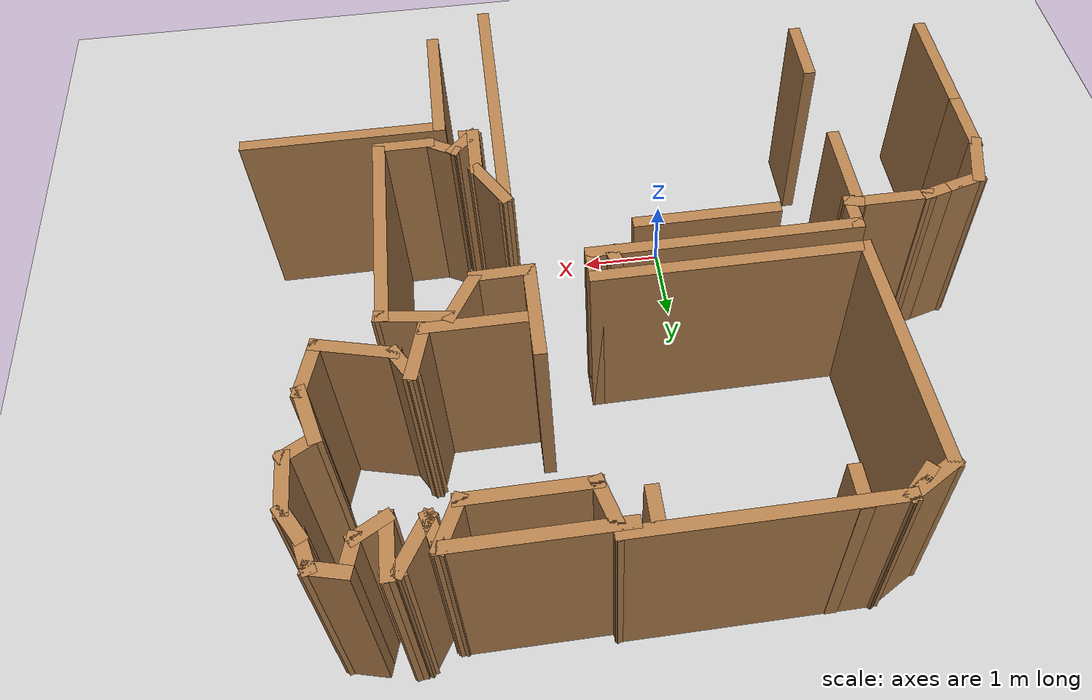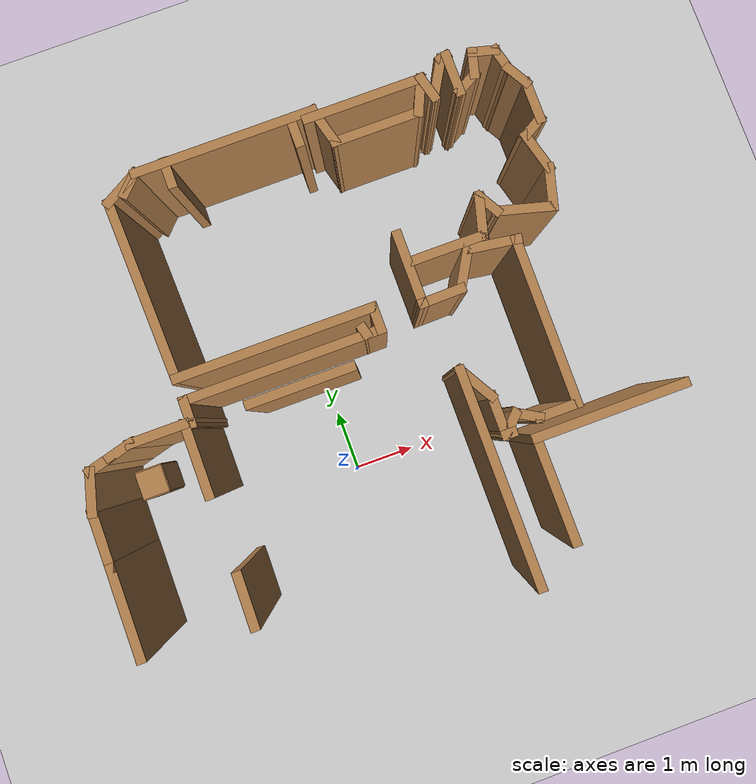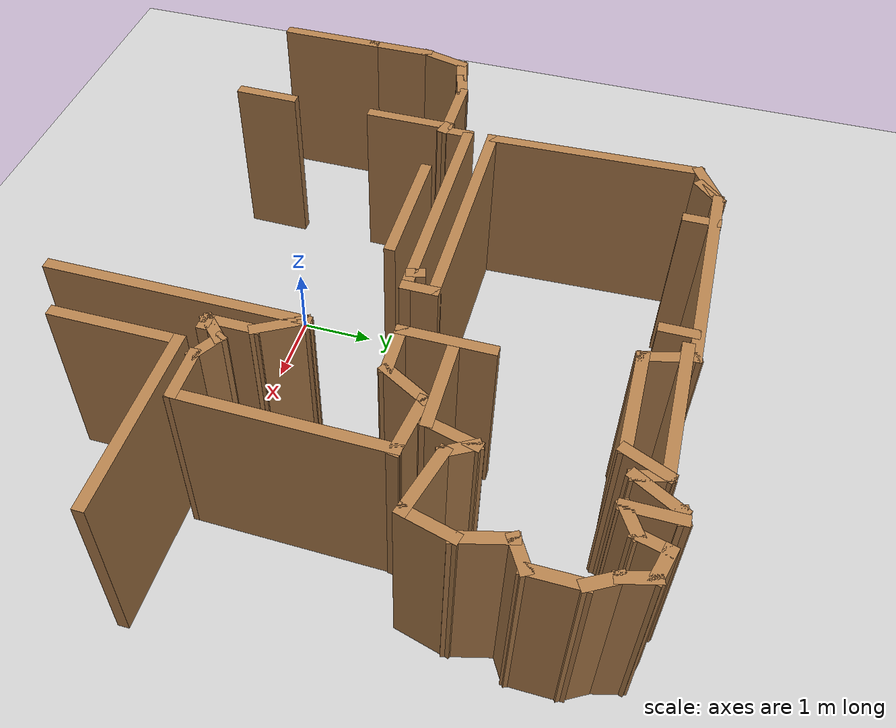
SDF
<sdf version="1.7">
 <world name="default">
  <model name="ground_plane">
   <static>1</static>
   <link name="link">
    <collision name="collision">
     <geometry><plane><normal>0 0 1</normal><size>100 100</size></plane></geometry>
     <surface>
      <contact><collide_bitmask>65535</collide_bitmask></contact>
      <friction><ode><mu>100</mu><mu2>50</mu2></ode></friction>
     </surface>
    </collision>
    <visual name="visual">
     <cast_shadows>0</cast_shadows>
     <geometry><plane><normal>0 0 1</normal><size>100 100</size></plane></geometry>
     <material>
      <script><uri>file://media/materials/scripts/gazebo.material</uri><name>Gazebo/Grey</name></script>
     </material>
    </visual>
   </link>
  </model>
  <model name="map_9">
   <pose>0.660855 -0.93148 0 0 -0 0</pose>
   <link name="Wall_0">
    <collision name="Wall_0_Collision">
     <geometry><box><size>3 0.15 2.5</size></box></geometry>
     <pose>0 0 1.25 0 -0 0</pose>
    </collision>
    <visual name="Wall_0_Visual">
     <pose>0 0 1.25 0 -0 0</pose>
     <geometry><box><size>3 0.15 2.5</size></box></geometry>
     <material>
      <script><uri>file://media/materials/scripts/gazebo.material</uri><name>Gazebo/Wood</name></script>
      <ambient>1 1 1 1</ambient>
     </material>
     <meta><layer>0</layer></meta>
    </visual>
    <pose>-0.783393 6.3177 0 0 -0 3.14159</pose>
   </link>
   <link name="Wall_1">
    <collision name="Wall_1_Collision">
     <geometry><box><size>0.5 0.15 2.5</size></box></geometry>
     <pose>0 0 1.25 0 -0 0</pose>
    </collision>
    <visual name="Wall_1_Visual">
     <pose>0 0 1.25 0 -0 0</pose>
     <geometry><box><size>0.5 0.15 2.5</size></box></geometry>
     <material>
      <script><uri>file://media/materials/scripts/gazebo.material</uri><name>Gazebo/Wood</name></script>
      <ambient>1 1 1 1</ambient>
     </material>
     <meta><layer>0</layer></meta>
    </visual>
    <pose>-2.33214 6.19396 0 0 -0 -2.35619</pose>
   </link>
   <link name="Wall_10">
    <collision name="Wall_10_Collision">
     <geometry><box><size>3.00225 0.15 2.5</size></box></geometry>
     <pose>0 0 1.25 0 -0 0</pose>
    </collision>
    <visual name="Wall_10_Visual">
     <pose>0 0 1.25 0 -0 0</pose>
     <geometry><box><size>3.00225 0.15 2.5</size></box></geometry>
     <material>
      <script><uri>file://media/materials/scripts/gazebo.material</uri><name>Gazebo/Wood</name></script>
      <ambient>1 1 1 1</ambient>
     </material>
     <meta><layer>0</layer></meta>
    </visual>
    <pose>-2.67944 4.5924 0 0 -0 -1.53674</pose>
   </link>
   <link name="Wall_100">
    <collision name="Wall_100_Collision">
     <geometry><box><size>2.75093 0.15 2.5</size></box></geometry>
     <pose>0 0 1.25 0 -0 0</pose>
    </collision>
    <visual name="Wall_100_Visual">
     <pose>0 0 1.25 0 -0 0</pose>
     <geometry><box><size>2.75093 0.15 2.5</size></box></geometry>
     <material>
      <script><uri>file://media/materials/scripts/gazebo.material</uri><name>Gazebo/Wood</name></script>
      <ambient>1 1 1 1</ambient>
     </material>
     <meta><layer>0</layer></meta>
    </visual>
    <pose>2.82487 2.0909 0 0 -0 1.5619</pose>
   </link>
   <link name="Wall_101">
    <collision name="Wall_101_Collision">
     <geometry><box><size>0.893137 0.15 2.5</size></box></geometry>
     <pose>0 0 1.25 0 -0 0</pose>
    </collision>
    <visual name="Wall_101_Visual">
     <pose>0 0 1.25 0 -0 0</pose>
     <geometry><box><size>0.893137 0.15 2.5</size></box></geometry>
     <material>
      <script><uri>file://media/materials/scripts/gazebo.material</uri><name>Gazebo/Wood</name></script>
      <ambient>1 1 1 1</ambient>
     </material>
     <meta><layer>0</layer></meta>
    </visual>
    <pose>2.49186 3.44439 0 0 -0 2.99715</pose>
   </link>
   <link name="Wall_102">
    <collision name="Wall_102_Collision">
     <geometry><box><size>0.75 0.15 2.5</size></box></geometry>
     <pose>0 0 1.25 0 -0 0</pose>
    </collision>
    <visual name="Wall_102_Visual">
     <pose>0 0 1.25 0 -0 0</pose>
     <geometry><box><size>0.75 0.15 2.5</size></box></geometry>
     <material>
      <script><uri>file://media/materials/scripts/gazebo.material</uri><name>Gazebo/Wood</name></script>
      <ambient>1 1 1 1</ambient>
     </material>
     <meta><layer>0</layer></meta>
    </visual>
    <pose>1.95103 3.23807 0 0 -0 -2.0944</pose>
   </link>
   <link name="Wall_103">
    <collision name="Wall_103_Collision">
     <geometry><box><size>0.762107 0.15 2.5</size></box></geometry>
     <pose>0 0 1.25 0 -0 0</pose>
    </collision>
    <visual name="Wall_103_Visual">
     <pose>0 0 1.25 0 -0 0</pose>
     <geometry><box><size>0.762107 0.15 2.5</size></box></geometry>
     <material>
      <script><uri>file://media/materials/scripts/gazebo.material</uri><name>Gazebo/Wood</name></script>
      <ambient>1 1 1 1</ambient>
     </material>
     <meta><layer>0</layer></meta>
    </visual>
    <pose>1.49503 2.97245 0 0 -0 -3.12261</pose>
   </link>
   <link name="Wall_106">
    <collision name="Wall_106_Collision">
     <geometry><box><size>1.25 0.15 2.5</size></box></geometry>
     <pose>0 0 1.25 0 -0 0</pose>
    </collision>
    <visual name="Wall_106_Visual">
     <pose>0 0 1.25 0 -0 0</pose>
     <geometry><box><size>1.25 0.15 2.5</size></box></geometry>
     <material>
      <script><uri>file://media/materials/scripts/gazebo.material</uri><name>Gazebo/Wood</name></script>
      <ambient>1 1 1 1</ambient>
     </material>
     <meta><layer>0</layer></meta>
    </visual>
    <pose>1.18904 3.51664 0 0 -0 1.5708</pose>
   </link>
   <link name="Wall_108">
    <collision name="Wall_108_Collision">
     <geometry><box><size>1.25 0.15 2.5</size></box></geometry>
     <pose>0 0 1.25 0 -0 0</pose>
    </collision>
    <visual name="Wall_108_Visual">
     <pose>0 0 1.25 0 -0 0</pose>
     <geometry><box><size>1.25 0.15 2.5</size></box></geometry>
     <material>
      <script><uri>file://media/materials/scripts/gazebo.material</uri><name>Gazebo/Wood</name></script>
      <ambient>1 1 1 1</ambient>
     </material>
     <meta><layer>0</layer></meta>
    </visual>
    <pose>1.84331 3.61909 0 0 -0 0</pose>
   </link>
   <link name="Wall_109">
    <collision name="Wall_109_Collision">
     <geometry><box><size>0.75 0.15 2.5</size></box></geometry>
     <pose>0 0 1.25 0 -0 0</pose>
    </collision>
    <visual name="Wall_109_Visual">
     <pose>0 0 1.25 0 -0 0</pose>
     <geometry><box><size>0.75 0.15 2.5</size></box></geometry>
     <material>
      <script><uri>file://media/materials/scripts/gazebo.material</uri><name>Gazebo/Wood</name></script>
      <ambient>1 1 1 1</ambient>
     </material>
     <meta><layer>0</layer></meta>
    </visual>
    <pose>2.47096 3.90887 0 0 -0 1.309</pose>
   </link>
   <link name="Wall_110">
    <collision name="Wall_110_Collision">
     <geometry><box><size>0.5 0.15 2.5</size></box></geometry>
     <pose>0 0 1.25 0 -0 0</pose>
    </collision>
    <visual name="Wall_110_Visual">
     <pose>0 0 1.25 0 -0 0</pose>
     <geometry><box><size>0.5 0.15 2.5</size></box></geometry>
     <material>
      <script><uri>file://media/materials/scripts/gazebo.material</uri><name>Gazebo/Wood</name></script>
      <ambient>1 1 1 1</ambient>
     </material>
     <meta><layer>0</layer></meta>
    </visual>
    <pose>2.6361 4.04709 0 0 -0 -1.0472</pose>
   </link>
   <link name="Wall_111">
    <collision name="Wall_111_Collision">
     <geometry><box><size>1 0.15 2.5</size></box></geometry>
     <pose>0 0 1.25 0 -0 0</pose>
    </collision>
    <visual name="Wall_111_Visual">
     <pose>0 0 1.25 0 -0 0</pose>
     <geometry><box><size>1 0.15 2.5</size></box></geometry>
     <material>
      <script><uri>file://media/materials/scripts/gazebo.material</uri><name>Gazebo/Wood</name></script>
      <ambient>1 1 1 1</ambient>
     </material>
     <meta><layer>0</layer></meta>
    </visual>
    <pose>3.13412 3.78554 0 0 -0 -0.261799</pose>
   </link>
   <link name="Wall_112">
    <collision name="Wall_112_Collision">
     <geometry><box><size>0.75 0.15 2.5</size></box></geometry>
     <pose>0 0 1.25 0 -0 0</pose>
    </collision>
    <visual name="Wall_112_Visual">
     <pose>0 0 1.25 0 -0 0</pose>
     <geometry><box><size>0.75 0.15 2.5</size></box></geometry>
     <material>
      <script><uri>file://media/materials/scripts/gazebo.material</uri><name>Gazebo/Wood</name></script>
      <ambient>1 1 1 1</ambient>
     </material>
     <meta><layer>0</layer></meta>
    </visual>
    <pose>3.62229 3.96532 0 0 -0 1.309</pose>
   </link>
   <link name="Wall_113">
    <collision name="Wall_113_Collision">
     <geometry><box><size>0.75 0.15 2.5</size></box></geometry>
     <pose>0 0 1.25 0 -0 0</pose>
    </collision>
    <visual name="Wall_113_Visual">
     <pose>0 0 1.25 0 -0 0</pose>
     <geometry><box><size>0.75 0.15 2.5</size></box></geometry>
     <material>
      <script><uri>file://media/materials/scripts/gazebo.material</uri><name>Gazebo/Wood</name></script>
      <ambient>1 1 1 1</ambient>
     </material>
     <meta><layer>0</layer></meta>
    </visual>
    <pose>3.62229 4.54487 0 0 -0 1.8326</pose>
   </link>
   <link name="Wall_114">
    <collision name="Wall_114_Collision">
     <geometry><box><size>0.5 0.15 2.5</size></box></geometry>
     <pose>0 0 1.25 0 -0 0</pose>
    </collision>
    <visual name="Wall_114_Visual">
     <pose>0 0 1.25 0 -0 0</pose>
     <geometry><box><size>0.5 0.15 2.5</size></box></geometry>
     <material>
      <script><uri>file://media/materials/scripts/gazebo.material</uri><name>Gazebo/Wood</name></script>
      <ambient>1 1 1 1</ambient>
     </material>
     <meta><layer>0</layer></meta>
    </visual>
    <pose>3.6962 4.92215 0 0 -0 0.523599</pose>
   </link>
   <link name="Wall_115">
    <collision name="Wall_115_Collision">
     <geometry><box><size>0.75 0.15 2.5</size></box></geometry>
     <pose>0 0 1.25 0 -0 0</pose>
    </collision>
    <visual name="Wall_115_Visual">
     <pose>0 0 1.25 0 -0 0</pose>
     <geometry><box><size>0.75 0.15 2.5</size></box></geometry>
     <material>
      <script><uri>file://media/materials/scripts/gazebo.material</uri><name>Gazebo/Wood</name></script>
      <ambient>1 1 1 1</ambient>
     </material>
     <meta><layer>0</layer></meta>
    </visual>
    <pose>3.84775 5.30965 0 0 -0 1.5708</pose>
   </link>
   <link name="Wall_116">
    <collision name="Wall_116_Collision">
     <geometry><box><size>0.5 0.15 2.5</size></box></geometry>
     <pose>0 0 1.25 0 -0 0</pose>
    </collision>
    <visual name="Wall_116_Visual">
     <pose>0 0 1.25 0 -0 0</pose>
     <geometry><box><size>0.5 0.15 2.5</size></box></geometry>
     <material>
      <script><uri>file://media/materials/scripts/gazebo.material</uri><name>Gazebo/Wood</name></script>
      <ambient>1 1 1 1</ambient>
     </material>
     <meta><layer>0</layer></meta>
    </visual>
    <pose>3.76025 5.76121 0 0 -0 2.0944</pose>
   </link>
   <link name="Wall_117">
    <collision name="Wall_117_Collision">
     <geometry><box><size>0.5 0.15 2.5</size></box></geometry>
     <pose>0 0 1.25 0 -0 0</pose>
    </collision>
    <visual name="Wall_117_Visual">
     <pose>0 0 1.25 0 -0 0</pose>
     <geometry><box><size>0.5 0.15 2.5</size></box></geometry>
     <material>
      <script><uri>file://media/materials/scripts/gazebo.material</uri><name>Gazebo/Wood</name></script>
      <ambient>1 1 1 1</ambient>
     </material>
     <meta><layer>0</layer></meta>
    </visual>
    <pose>3.62746 6.0818 0 0 -0 1.8326</pose>
   </link>
   <link name="Wall_118">
    <collision name="Wall_118_Collision">
     <geometry><box><size>0.5 0.15 2.5</size></box></geometry>
     <pose>0 0 1.25 0 -0 0</pose>
    </collision>
    <visual name="Wall_118_Visual">
     <pose>0 0 1.25 0 -0 0</pose>
     <geometry><box><size>0.5 0.15 2.5</size></box></geometry>
     <material>
      <script><uri>file://media/materials/scripts/gazebo.material</uri><name>Gazebo/Wood</name></script>
      <ambient>1 1 1 1</ambient>
     </material>
     <meta><layer>0</layer></meta>
    </visual>
    <pose>3.41313 6.29613 0 0 -0 2.87979</pose>
   </link>
   <link name="Wall_119">
    <collision name="Wall_119_Collision">
     <geometry><box><size>0.5 0.15 2.5</size></box></geometry>
     <pose>0 0 1.25 0 -0 0</pose>
    </collision>
    <visual name="Wall_119_Visual">
     <pose>0 0 1.25 0 -0 0</pose>
     <geometry><box><size>0.5 0.15 2.5</size></box></geometry>
     <material>
      <script><uri>file://media/materials/scripts/gazebo.material</uri><name>Gazebo/Wood</name></script>
      <ambient>1 1 1 1</ambient>
     </material>
     <meta><layer>0</layer></meta>
    </visual>
    <pose>3.1988 6.17238 0 0 -0 -1.8326</pose>
   </link>
   <link name="Wall_120">
    <collision name="Wall_120_Collision">
     <geometry><box><size>0.5 0.15 2.5</size></box></geometry>
     <pose>0 0 1.25 0 -0 0</pose>
    </collision>
    <visual name="Wall_120_Visual">
     <pose>0 0 1.25 0 -0 0</pose>
     <geometry><box><size>0.5 0.15 2.5</size></box></geometry>
     <material>
      <script><uri>file://media/materials/scripts/gazebo.material</uri><name>Gazebo/Wood</name></script>
      <ambient>1 1 1 1</ambient>
     </material>
     <meta><layer>0</layer></meta>
    </visual>
    <pose>3.00195 5.91585 0 0 -0 -2.61799</pose>
   </link>
   <link name="Wall_121">
    <collision name="Wall_121_Collision">
     <geometry><box><size>0.75 0.15 2.5</size></box></geometry>
     <pose>0 0 1.25 0 -0 0</pose>
    </collision>
    <visual name="Wall_121_Visual">
     <pose>0 0 1.25 0 -0 0</pose>
     <geometry><box><size>0.75 0.15 2.5</size></box></geometry>
     <material>
      <script><uri>file://media/materials/scripts/gazebo.material</uri><name>Gazebo/Wood</name></script>
      <ambient>1 1 1 1</ambient>
     </material>
     <meta><layer>0</layer></meta>
    </visual>
    <pose>2.85039 6.12835 0 0 -0 1.5708</pose>
   </link>
   <link name="Wall_122">
    <collision name="Wall_122_Collision">
     <geometry><box><size>0.25 0.15 2.5</size></box></geometry>
     <pose>0 0 1.25 0 -0 0</pose>
    </collision>
    <visual name="Wall_122_Visual">
     <pose>0 0 1.25 0 -0 0</pose>
     <geometry><box><size>0.25 0.15 2.5</size></box></geometry>
     <material>
      <script><uri>file://media/materials/scripts/gazebo.material</uri><name>Gazebo/Wood</name></script>
      <ambient>1 1 1 1</ambient>
     </material>
     <meta><layer>0</layer></meta>
    </visual>
    <pose>2.8021 6.4154 0 0 -0 -2.87979</pose>
   </link>
   <link name="Wall_123">
    <collision name="Wall_123_Collision">
     <geometry><box><size>0.75 0.15 2.5</size></box></geometry>
     <pose>0 0 1.25 0 -0 0</pose>
    </collision>
    <visual name="Wall_123_Visual">
     <pose>0 0 1.25 0 -0 0</pose>
     <geometry><box><size>0.75 0.15 2.5</size></box></geometry>
     <material>
      <script><uri>file://media/materials/scripts/gazebo.material</uri><name>Gazebo/Wood</name></script>
      <ambient>1 1 1 1</ambient>
     </material>
     <meta><layer>0</layer></meta>
    </visual>
    <pose>2.6038 6.14266 0 0 -0 -2.0944</pose>
   </link>
   <link name="Wall_124">
    <collision name="Wall_124_Collision">
     <geometry><box><size>0.5 0.15 2.5</size></box></geometry>
     <pose>0 0 1.25 0 -0 0</pose>
    </collision>
    <visual name="Wall_124_Visual">
     <pose>0 0 1.25 0 -0 0</pose>
     <geometry><box><size>0.5 0.15 2.5</size></box></geometry>
     <material>
      <script><uri>file://media/materials/scripts/gazebo.material</uri><name>Gazebo/Wood</name></script>
      <ambient>1 1 1 1</ambient>
     </material>
     <meta><layer>0</layer></meta>
    </visual>
    <pose>2.40851 6.05189 0 0 -0 1.8326</pose>
   </link>
   <link name="Wall_125">
    <collision name="Wall_125_Collision">
     <geometry><box><size>2 0.15 2.5</size></box></geometry>
     <pose>0 0 1.25 0 -0 0</pose>
    </collision>
    <visual name="Wall_125_Visual">
     <pose>0 0 1.25 0 -0 0</pose>
     <geometry><box><size>2 0.15 2.5</size></box></geometry>
     <material>
      <script><uri>file://media/materials/scripts/gazebo.material</uri><name>Gazebo/Wood</name></script>
      <ambient>1 1 1 1</ambient>
     </material>
     <meta><layer>0</layer></meta>
    </visual>
    <pose>1.43822 6.22092 0 0 -0 3.14159</pose>
   </link>
   <link name="Wall_128">
    <collision name="Wall_128_Collision">
     <geometry><box><size>0.75 0.15 2.5</size></box></geometry>
     <pose>0 0 1.25 0 -0 0</pose>
    </collision>
    <visual name="Wall_128_Visual">
     <pose>0 0 1.25 0 -0 0</pose>
     <geometry><box><size>0.75 0.15 2.5</size></box></geometry>
     <material>
      <script><uri>file://media/materials/scripts/gazebo.material</uri><name>Gazebo/Wood</name></script>
      <ambient>1 1 1 1</ambient>
     </material>
     <meta><layer>0</layer></meta>
    </visual>
    <pose>0.719253 6.02792 0 0 -0 -1.309</pose>
   </link>
   <link name="Wall_129">
    <collision name="Wall_129_Collision">
     <geometry><box><size>1.5 0.15 2.5</size></box></geometry>
     <pose>0 0 1.25 0 -0 0</pose>
    </collision>
    <visual name="Wall_129_Visual">
     <pose>0 0 1.25 0 -0 0</pose>
     <geometry><box><size>1.5 0.15 2.5</size></box></geometry>
     <material>
      <script><uri>file://media/materials/scripts/gazebo.material</uri><name>Gazebo/Wood</name></script>
      <ambient>1 1 1 1</ambient>
     </material>
     <meta><layer>0</layer></meta>
    </visual>
    <pose>1.4719 5.73815 0 0 -0 0</pose>
   </link>
   <link name="Wall_130">
    <collision name="Wall_130_Collision">
     <geometry><box><size>0.679025 0.15 2.5</size></box></geometry>
     <pose>0 0 1.25 0 -0 0</pose>
    </collision>
    <visual name="Wall_130_Visual">
     <pose>0 0 1.25 0 -0 0</pose>
     <geometry><box><size>0.679025 0.15 2.5</size></box></geometry>
     <material>
      <script><uri>file://media/materials/scripts/gazebo.material</uri><name>Gazebo/Wood</name></script>
      <ambient>1 1 1 1</ambient>
     </material>
     <meta><layer>0</layer></meta>
    </visual>
    <pose>2.25506 5.97953 0 0 -0 1.14955</pose>
   </link>
   <link name="Wall_132">
    <collision name="Wall_132_Collision">
     <geometry><box><size>0.5 0.15 2.5</size></box></geometry>
     <pose>0 0 1.25 0 -0 0</pose>
    </collision>
    <visual name="Wall_132_Visual">
     <pose>0 0 1.25 0 -0 0</pose>
     <geometry><box><size>0.5 0.15 2.5</size></box></geometry>
     <material>
      <script><uri>file://media/materials/scripts/gazebo.material</uri><name>Gazebo/Wood</name></script>
      <ambient>1 1 1 1</ambient>
     </material>
     <meta><layer>0</layer></meta>
    </visual>
    <pose>-1.73728 6.15158 0 0 -0 -1.5708</pose>
   </link>
   <link name="Wall_134">
    <collision name="Wall_134_Collision">
     <geometry><box><size>0.5 0.15 2.5</size></box></geometry>
     <pose>0 0 1.25 0 -0 0</pose>
    </collision>
    <visual name="Wall_134_Visual">
     <pose>0 0 1.25 0 -0 0</pose>
     <geometry><box><size>0.5 0.15 2.5</size></box></geometry>
     <material>
      <script><uri>file://media/materials/scripts/gazebo.material</uri><name>Gazebo/Wood</name></script>
      <ambient>1 1 1 1</ambient>
     </material>
     <meta><layer>0</layer></meta>
    </visual>
    <pose>0.281673 6.0904 0 0 -0 -1.5708</pose>
   </link>
   <link name="Wall_136">
    <collision name="Wall_136_Collision">
     <geometry><box><size>1.75 0.15 2.5</size></box></geometry>
     <pose>0 0 1.25 0 -0 0</pose>
    </collision>
    <visual name="Wall_136_Visual">
     <pose>0 0 1.25 0 -0 0</pose>
     <geometry><box><size>1.75 0.15 2.5</size></box></geometry>
     <material>
      <script><uri>file://media/materials/scripts/gazebo.material</uri><name>Gazebo/Wood</name></script>
      <ambient>1 1 1 1</ambient>
     </material>
     <meta><layer>0</layer></meta>
    </visual>
    <pose>-0.937282 2.44162 0 0 -0 0</pose>
   </link>
   <link name="Wall_138">
    <collision name="Wall_138_Collision">
     <geometry><box><size>1.25 0.15 2.5</size></box></geometry>
     <pose>0 0 1.25 0 -0 0</pose>
    </collision>
    <visual name="Wall_138_Visual">
     <pose>0 0 1.25 0 -0 0</pose>
     <geometry><box><size>1.25 0.15 2.5</size></box></geometry>
     <material>
      <script><uri>file://media/materials/scripts/gazebo.material</uri><name>Gazebo/Wood</name></script>
      <ambient>1 1 1 1</ambient>
     </material>
     <meta><layer>0</layer></meta>
    </visual>
    <pose>-2.72747 1.94299 0 0 -0 -1.5708</pose>
   </link>
   <link name="Wall_14">
    <collision name="Wall_14_Collision">
     <geometry><box><size>0.25 0.15 2.5</size></box></geometry>
     <pose>0 0 1.25 0 -0 0</pose>
    </collision>
    <visual name="Wall_14_Visual">
     <pose>0 0 1.25 0 -0 0</pose>
     <geometry><box><size>0.25 0.15 2.5</size></box></geometry>
     <material>
      <script><uri>file://media/materials/scripts/gazebo.material</uri><name>Gazebo/Wood</name></script>
      <ambient>1 1 1 1</ambient>
     </material>
     <meta><layer>0</layer></meta>
    </visual>
    <pose>0.229548 2.87132 0 0 -0 -1.309</pose>
   </link>
   <link name="Wall_140">
    <collision name="Wall_140_Collision">
     <geometry><box><size>0.898938 0.15 2.5</size></box></geometry>
     <pose>0 0 1.25 0 -0 0</pose>
    </collision>
    <visual name="Wall_140_Visual">
     <pose>0 0 1.25 0 -0 0</pose>
     <geometry><box><size>0.898938 0.15 2.5</size></box></geometry>
     <material>
      <script><uri>file://media/materials/scripts/gazebo.material</uri><name>Gazebo/Wood</name></script>
      <ambient>1 1 1 1</ambient>
     </material>
     <meta><layer>0</layer></meta>
    </visual>
    <pose>-2.7196 -0.227096 0 0 -0 -1.57995</pose>
   </link>
   <link name="Wall_16">
    <collision name="Wall_16_Collision">
     <geometry><box><size>3.25 0.15 2.5</size></box></geometry>
     <pose>0 0 1.25 0 -0 0</pose>
    </collision>
    <visual name="Wall_16_Visual">
     <pose>0 0 1.25 0 -0 0</pose>
     <geometry><box><size>3.25 0.15 2.5</size></box></geometry>
     <material>
      <script><uri>file://media/materials/scripts/gazebo.material</uri><name>Gazebo/Wood</name></script>
      <ambient>1 1 1 1</ambient>
     </material>
     <meta><layer>0</layer></meta>
    </visual>
    <pose>-1.08088 3.1671 0 0 -0 0</pose>
   </link>
   <link name="Wall_17">
    <collision name="Wall_17_Collision">
     <geometry><box><size>0.5 0.15 2.5</size></box></geometry>
     <pose>0 0 1.25 0 -0 0</pose>
    </collision>
    <visual name="Wall_17_Visual">
     <pose>0 0 1.25 0 -0 0</pose>
     <geometry><box><size>0.5 0.15 2.5</size></box></geometry>
     <material>
      <script><uri>file://media/materials/scripts/gazebo.material</uri><name>Gazebo/Wood</name></script>
      <ambient>1 1 1 1</ambient>
     </material>
     <meta><layer>0</layer></meta>
    </visual>
    <pose>0.46912 2.9921 0 0 -0 -1.5708</pose>
   </link>
   <link name="Wall_18">
    <collision name="Wall_18_Collision">
     <geometry><box><size>3.25 0.15 2.5</size></box></geometry>
     <pose>0 0 1.25 0 -0 0</pose>
    </collision>
    <visual name="Wall_18_Visual">
     <pose>0 0 1.25 0 -0 0</pose>
     <geometry><box><size>3.25 0.15 2.5</size></box></geometry>
     <material>
      <script><uri>file://media/materials/scripts/gazebo.material</uri><name>Gazebo/Wood</name></script>
      <ambient>1 1 1 1</ambient>
     </material>
     <meta><layer>0</layer></meta>
    </visual>
    <pose>-1.08088 2.8171 0 0 -0 3.14159</pose>
   </link>
   <link name="Wall_19">
    <collision name="Wall_19_Collision">
     <geometry><box><size>0.5 0.15 2.5</size></box></geometry>
     <pose>0 0 1.25 0 -0 0</pose>
    </collision>
    <visual name="Wall_19_Visual">
     <pose>0 0 1.25 0 -0 0</pose>
     <geometry><box><size>0.5 0.15 2.5</size></box></geometry>
     <material>
      <script><uri>file://media/materials/scripts/gazebo.material</uri><name>Gazebo/Wood</name></script>
      <ambient>1 1 1 1</ambient>
     </material>
     <meta><layer>0</layer></meta>
    </visual>
    <pose>-2.63088 2.6421 0 0 -0 -1.5708</pose>
   </link>
   <link name="Wall_20">
    <collision name="Wall_20_Collision">
     <geometry><box><size>0.25 0.15 2.5</size></box></geometry>
     <pose>0 0 1.25 0 -0 0</pose>
    </collision>
    <visual name="Wall_20_Visual">
     <pose>0 0 1.25 0 -0 0</pose>
     <geometry><box><size>0.25 0.15 2.5</size></box></geometry>
     <material>
      <script><uri>file://media/materials/scripts/gazebo.material</uri><name>Gazebo/Wood</name></script>
      <ambient>1 1 1 1</ambient>
     </material>
     <meta><layer>0</layer></meta>
    </visual>
    <pose>-2.67918 2.48005 0 0 -0 2.87979</pose>
   </link>
   <link name="Wall_21">
    <collision name="Wall_21_Collision">
     <geometry><box><size>1 0.15 2.5</size></box></geometry>
     <pose>0 0 1.25 0 -0 0</pose>
    </collision>
    <visual name="Wall_21_Visual">
     <pose>0 0 1.25 0 -0 0</pose>
     <geometry><box><size>1 0.15 2.5</size></box></geometry>
     <material>
      <script><uri>file://media/materials/scripts/gazebo.material</uri><name>Gazebo/Wood</name></script>
      <ambient>1 1 1 1</ambient>
     </material>
     <meta><layer>0</layer></meta>
    </visual>
    <pose>-3.15247 2.49299 0 0 -0 3.14159</pose>
   </link>
   <link name="Wall_22">
    <collision name="Wall_22_Collision">
     <geometry><box><size>0.5 0.15 2.5</size></box></geometry>
     <pose>0 0 1.25 0 -0 0</pose>
    </collision>
    <visual name="Wall_22_Visual">
     <pose>0 0 1.25 0 -0 0</pose>
     <geometry><box><size>0.5 0.15 2.5</size></box></geometry>
     <material>
      <script><uri>file://media/materials/scripts/gazebo.material</uri><name>Gazebo/Wood</name></script>
      <ambient>1 1 1 1</ambient>
     </material>
     <meta><layer>0</layer></meta>
    </visual>
    <pose>-3.74651 2.44769 0 0 -0 -2.87979</pose>
   </link>
   <link name="Wall_23">
    <collision name="Wall_23_Collision">
     <geometry><box><size>0.5 0.15 2.5</size></box></geometry>
     <pose>0 0 1.25 0 -0 0</pose>
    </collision>
    <visual name="Wall_23_Visual">
     <pose>0 0 1.25 0 -0 0</pose>
     <geometry><box><size>0.5 0.15 2.5</size></box></geometry>
     <material>
      <script><uri>file://media/materials/scripts/gazebo.material</uri><name>Gazebo/Wood</name></script>
      <ambient>1 1 1 1</ambient>
     </material>
     <meta><layer>0</layer></meta>
    </visual>
    <pose>-4.08458 2.35711 0 0 -0 -2.87979</pose>
   </link>
   <link name="Wall_24">
    <collision name="Wall_24_Collision">
     <geometry><box><size>0.75 0.15 2.5</size></box></geometry>
     <pose>0 0 1.25 0 -0 0</pose>
    </collision>
    <visual name="Wall_24_Visual">
     <pose>0 0 1.25 0 -0 0</pose>
     <geometry><box><size>0.75 0.15 2.5</size></box></geometry>
     <material>
      <script><uri>file://media/materials/scripts/gazebo.material</uri><name>Gazebo/Wood</name></script>
      <ambient>1 1 1 1</ambient>
     </material>
     <meta><layer>0</layer></meta>
    </visual>
    <pose>-4.33127 2.02203 0 0 -0 -1.8326</pose>
   </link>
   <link name="Wall_25">
    <collision name="Wall_25_Collision">
     <geometry><box><size>1 0.15 2.5</size></box></geometry>
     <pose>0 0 1.25 0 -0 0</pose>
    </collision>
    <visual name="Wall_25_Visual">
     <pose>0 0 1.25 0 -0 0</pose>
     <geometry><box><size>1 0.15 2.5</size></box></geometry>
     <material>
      <script><uri>file://media/materials/scripts/gazebo.material</uri><name>Gazebo/Wood</name></script>
      <ambient>1 1 1 1</ambient>
     </material>
     <meta><layer>0</layer></meta>
    </visual>
    <pose>-4.40891 1.30726 0 0 -0 -1.5708</pose>
   </link>
   <link name="Wall_26">
    <collision name="Wall_26_Collision">
     <geometry><box><size>1.5 0.15 2.5</size></box></geometry>
     <pose>0 0 1.25 0 -0 0</pose>
    </collision>
    <visual name="Wall_26_Visual">
     <pose>0 0 1.25 0 -0 0</pose>
     <geometry><box><size>1.5 0.15 2.5</size></box></geometry>
     <material>
      <script><uri>file://media/materials/scripts/gazebo.material</uri><name>Gazebo/Wood</name></script>
      <ambient>1 1 1 1</ambient>
     </material>
     <meta><layer>0</layer></meta>
    </visual>
    <pose>-4.40891 0.207257 0 0 -0 -1.5708</pose>
   </link>
   <link name="Wall_77">
    <collision name="Wall_77_Collision">
     <geometry><box><size>2.5 0.15 2.5</size></box></geometry>
     <pose>0 0 1.25 0 -0 0</pose>
    </collision>
    <visual name="Wall_77_Visual">
     <pose>0 0 1.25 0 -0 0</pose>
     <geometry><box><size>2.5 0.15 2.5</size></box></geometry>
     <material>
      <script><uri>file://media/materials/scripts/gazebo.material</uri><name>Gazebo/Wood</name></script>
      <ambient>1 1 1 1</ambient>
     </material>
     <meta><layer>0</layer></meta>
    </visual>
    <pose>3.24083 0.522388 0 0 -0 3.14159</pose>
   </link>
   <link name="Wall_78">
    <collision name="Wall_78_Collision">
     <geometry><box><size>1.75 0.15 2.5</size></box></geometry>
     <pose>0 0 1.25 0 -0 0</pose>
    </collision>
    <visual name="Wall_78_Visual">
     <pose>0 0 1.25 0 -0 0</pose>
     <geometry><box><size>1.75 0.15 2.5</size></box></geometry>
     <material>
      <script><uri>file://media/materials/scripts/gazebo.material</uri><name>Gazebo/Wood</name></script>
      <ambient>1 1 1 1</ambient>
     </material>
     <meta><layer>0</layer></meta>
    </visual>
    <pose>2.06583 -0.277612 0 0 -0 -1.5708</pose>
   </link>
   <link name="Wall_81">
    <collision name="Wall_81_Collision">
     <geometry><box><size>3.5 0.15 2.5</size></box></geometry>
     <pose>0 0 1.25 0 -0 0</pose>
    </collision>
    <visual name="Wall_81_Visual">
     <pose>0 0 1.25 0 -0 0</pose>
     <geometry><box><size>3.5 0.15 2.5</size></box></geometry>
     <material>
      <script><uri>file://media/materials/scripts/gazebo.material</uri><name>Gazebo/Wood</name></script>
      <ambient>1 1 1 1</ambient>
     </material>
     <meta><layer>0</layer></meta>
    </visual>
    <pose>1.36271 0.163032 0 0 -0 -1.5708</pose>
   </link>
   <link name="Wall_83">
    <collision name="Wall_83_Collision">
     <geometry><box><size>0.75 0.15 2.5</size></box></geometry>
     <pose>0 0 1.25 0 -0 0</pose>
    </collision>
    <visual name="Wall_83_Visual">
     <pose>0 0 1.25 0 -0 0</pose>
     <geometry><box><size>0.75 0.15 2.5</size></box></geometry>
     <material>
      <script><uri>file://media/materials/scripts/gazebo.material</uri><name>Gazebo/Wood</name></script>
      <ambient>1 1 1 1</ambient>
     </material>
     <meta><layer>0</layer></meta>
    </visual>
    <pose>1.5127 1.57822 0 0 -0 -1.0472</pose>
   </link>
   <link name="Wall_84">
    <collision name="Wall_84_Collision">
     <geometry><box><size>0.75 0.15 2.5</size></box></geometry>
     <pose>0 0 1.25 0 -0 0</pose>
    </collision>
    <visual name="Wall_84_Visual">
     <pose>0 0 1.25 0 -0 0</pose>
     <geometry><box><size>0.75 0.15 2.5</size></box></geometry>
     <material>
      <script><uri>file://media/materials/scripts/gazebo.material</uri><name>Gazebo/Wood</name></script>
      <ambient>1 1 1 1</ambient>
     </material>
     <meta><layer>0</layer></meta>
    </visual>
    <pose>1.66271 1.01842 0 0 -0 -1.5708</pose>
   </link>
   <link name="Wall_85">
    <collision name="Wall_85_Collision">
     <geometry><box><size>0.25 0.15 2.5</size></box></geometry>
     <pose>0 0 1.25 0 -0 0</pose>
    </collision>
    <visual name="Wall_85_Visual">
     <pose>0 0 1.25 0 -0 0</pose>
     <geometry><box><size>0.25 0.15 2.5</size></box></geometry>
     <material>
      <script><uri>file://media/materials/scripts/gazebo.material</uri><name>Gazebo/Wood</name></script>
      <ambient>1 1 1 1</ambient>
     </material>
     <meta><layer>0</layer></meta>
    </visual>
    <pose>1.7127 0.718417 0 0 -0 0</pose>
   </link>
   <link name="Wall_9">
    <collision name="Wall_9_Collision">
     <geometry><box><size>0.75 0.15 2.5</size></box></geometry>
     <pose>0 0 1.25 0 -0 0</pose>
    </collision>
    <visual name="Wall_9_Visual">
     <pose>0 0 1.25 0 -0 0</pose>
     <geometry><box><size>0.75 0.15 2.5</size></box></geometry>
     <material>
      <script><uri>file://media/materials/scripts/gazebo.material</uri><name>Gazebo/Wood</name></script>
      <ambient>1 1 1 1</ambient>
     </material>
     <meta><layer>0</layer></meta>
    </visual>
    <pose>-2.4682 6.1677 0 0 -0 -2.61799</pose>
   </link>
   <link name="Wall_96">
    <collision name="Wall_96_Collision">
     <geometry><box><size>0.15 0.15 2.5</size></box></geometry>
     <pose>0 0 1.25 0 -0 0</pose>
    </collision>
    <visual name="Wall_96_Visual">
     <pose>0 0 1.25 0 -0 0</pose>
     <geometry><box><size>0.15 0.15 2.5</size></box></geometry>
     <material>
      <script><uri>file://media/materials/scripts/gazebo.material</uri><name>Gazebo/Wood</name></script>
      <ambient>1 1 1 1</ambient>
     </material>
     <meta><layer>0</layer></meta>
    </visual>
    <pose>1.66271 0.718417 0 0 -0 0</pose>
   </link>
   <link name="Wall_97">
    <collision name="Wall_97_Collision">
     <geometry><box><size>0.5 0.15 2.5</size></box></geometry>
     <pose>0 0 1.25 0 -0 0</pose>
    </collision>
    <visual name="Wall_97_Visual">
     <pose>0 0 1.25 0 -0 0</pose>
     <geometry><box><size>0.5 0.15 2.5</size></box></geometry>
     <material>
      <script><uri>file://media/materials/scripts/gazebo.material</uri><name>Gazebo/Wood</name></script>
      <ambient>1 1 1 1</ambient>
     </material>
     <meta><layer>0</layer></meta>
    </visual>
    <pose>1.78645 0.842161 0 0 -0 0.785398</pose>
   </link>
   <link name="Wall_98">
    <collision name="Wall_98_Collision">
     <geometry><box><size>0.5 0.15 2.5</size></box></geometry>
     <pose>0 0 1.25 0 -0 0</pose>
    </collision>
    <visual name="Wall_98_Visual">
     <pose>0 0 1.25 0 -0 0</pose>
     <geometry><box><size>0.5 0.15 2.5</size></box></geometry>
     <material>
      <script><uri>file://media/materials/scripts/gazebo.material</uri><name>Gazebo/Wood</name></script>
      <ambient>1 1 1 1</ambient>
     </material>
     <meta><layer>0</layer></meta>
    </visual>
    <pose>2.06175 0.878404 0 0 -0 -0.523599</pose>
   </link>
   <link name="Wall_99">
    <collision name="Wall_99_Collision">
     <geometry><box><size>0.75 0.15 2.5</size></box></geometry>
     <pose>0 0 1.25 0 -0 0</pose>
    </collision>
    <visual name="Wall_99_Visual">
     <pose>0 0 1.25 0 -0 0</pose>
     <geometry><box><size>0.75 0.15 2.5</size></box></geometry>
     <material>
      <script><uri>file://media/materials/scripts/gazebo.material</uri><name>Gazebo/Wood</name></script>
      <ambient>1 1 1 1</ambient>
     </material>
     <meta><layer>0</layer></meta>
    </visual>
    <pose>2.5133 0.790905 0 0 -0 0</pose>
   </link>
   <static>1</static>
  </model>
  <model name="cabinet_0">
   <static>1</static>
   <link name="cabinet_bottom_plate">
    <inertial>
     <pose>0 0 -1 0 -0 0</pose>
     <inertia><ixx>2.05</ixx><ixy>0</ixy><ixz>0</ixz><iyy>2.05</iyy><iyz>0</iyz><izz>2.05</izz></inertia>
     <mass>25</mass>
    </inertial>
    <collision name="cabinet_bottom_plate_geom">
     <pose>0 0 0.01 0 -0 0</pose>
     <geometry><box><size>0.45 0.45 0.02</size></box></geometry>
    </collision>
    <visual name="cabinet_bottom_plate_geom_visual">
     <pose>0 0 0.01 0 -0 0</pose>
     <geometry><box><size>0.45 0.45 0.02</size></box></geometry>
     <material>
      <script><uri>file://media/materials/scripts/gazebo.material</uri><name>Gazebo/Wood</name></script>
     </material>
    </visual>
    <collision name="cabinet_bottom_plate_geom_cabinet_back_plate">
     <pose>0.235 0 0.51 0 -0 0</pose>
     <geometry><box><size>0.02 0.45 1.02</size></box></geometry>
    </collision>
    <visual name="cabinet_bottom_plate_geom_cabinet_back_plate_visual">
     <pose>0.235 0 0.51 0 -0 0</pose>
     <geometry><box><size>0.02 0.45 1.02</size></box></geometry>
     <material>
      <script><uri>file://media/materials/scripts/gazebo.material</uri><name>Gazebo/Wood</name></script>
     </material>
    </visual>
    <collision name="cabinet_bottom_plate_geom_cabinet_left_plate">
     <pose>0 0.235 0.51 0 -0 0</pose>
     <geometry><box><size>0.45 0.02 1.02</size></box></geometry>
    </collision>
    <visual name="cabinet_bottom_plate_geom_cabinet_left_plate_visual">
     <pose>0 0.235 0.51 0 -0 0</pose>
     <geometry><box><size>0.45 0.02 1.02</size></box></geometry>
     <material>
      <script><uri>file://media/materials/scripts/gazebo.material</uri><name>Gazebo/Wood</name></script>
     </material>
    </visual>
    <collision name="cabinet_bottom_plate_geom_cabinet_middle_plate">
     <pose>0 0 0.51 0 -0 0</pose>
     <geometry><box><size>0.45 0.45 0.02</size></box></geometry>
    </collision>
    <visual name="cabinet_bottom_plate_geom_cabinet_middle_plate_visual">
     <pose>0 0 0.51 0 -0 0</pose>
     <geometry><box><size>0.45 0.45 0.02</size></box></geometry>
     <material>
      <script><uri>file://media/materials/scripts/gazebo.material</uri><name>Gazebo/Wood</name></script>
     </material>
    </visual>
    <collision name="cabinet_bottom_plate_geom_cabinet_right_plate">
     <pose>0 -0.235 0.51 0 -0 0</pose>
     <geometry><box><size>0.45 0.02 1.02</size></box></geometry>
    </collision>
    <visual name="cabinet_bottom_plate_geom_cabinet_right_plate_visual">
     <pose>0 -0.235 0.51 0 -0 0</pose>
     <geometry><box><size>0.45 0.02 1.02</size></box></geometry>
     <material>
      <script><uri>file://media/materials/scripts/gazebo.material</uri><name>Gazebo/Wood</name></script>
     </material>
    </visual>
    <collision name="cabinet_bottom_plate_geom_cabinet_top_plate">
     <pose>0 0 1.01 0 -0 0</pose>
     <geometry><box><size>0.45 0.45 0.02</size></box></geometry>
    </collision>
    <visual name="cabinet_bottom_plate_geom_cabinet_top_plate_visual">
     <pose>0 0 1.01 0 -0 0</pose>
     <geometry><box><size>0.45 0.45 0.02</size></box></geometry>
     <material>
      <script><uri>file://media/materials/scripts/gazebo.material</uri><name>Gazebo/Wood</name></script>
     </material>
    </visual>
   </link>
   <pose>-3.19356 0.960911 0 0 -0 0</pose>
  </model>
 </world>
</sdf>
